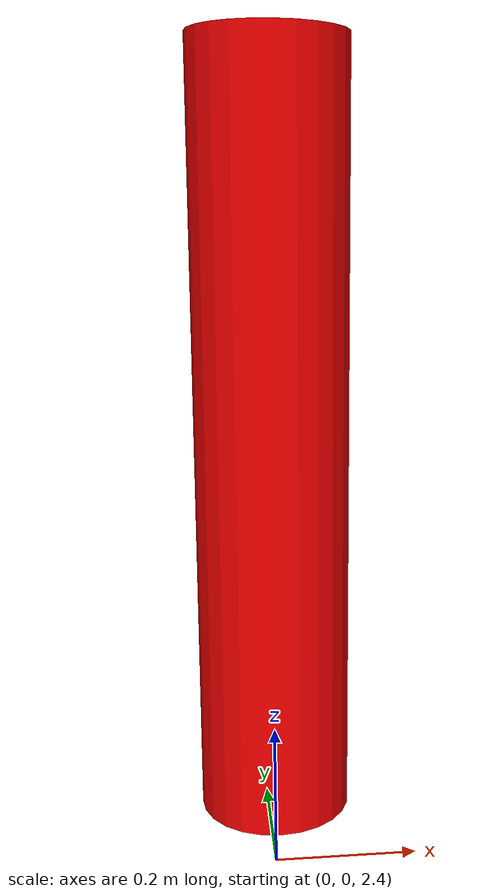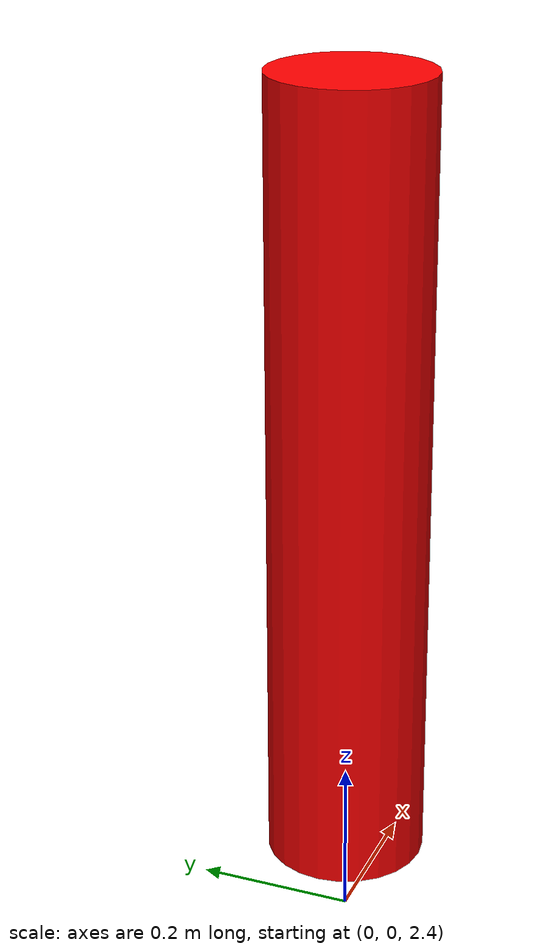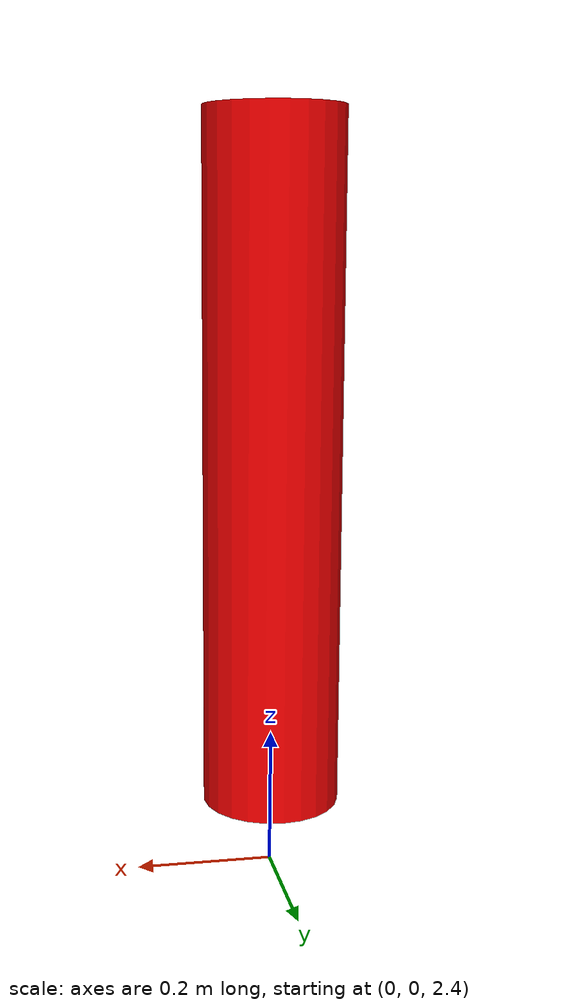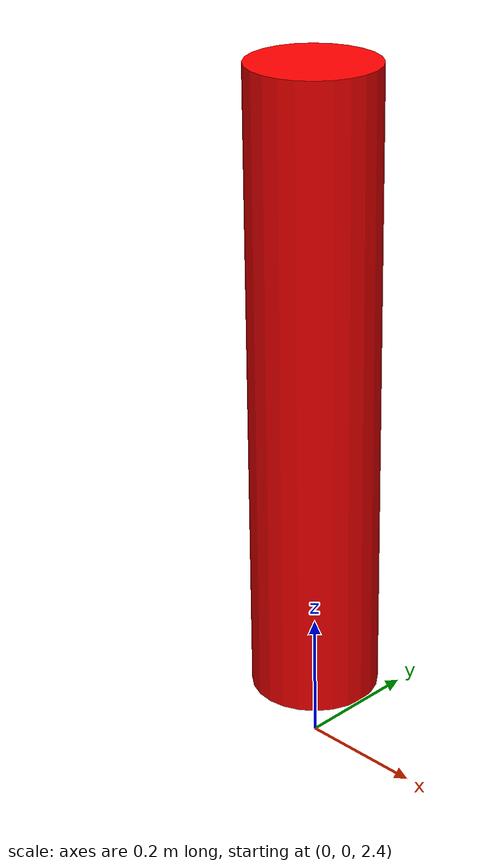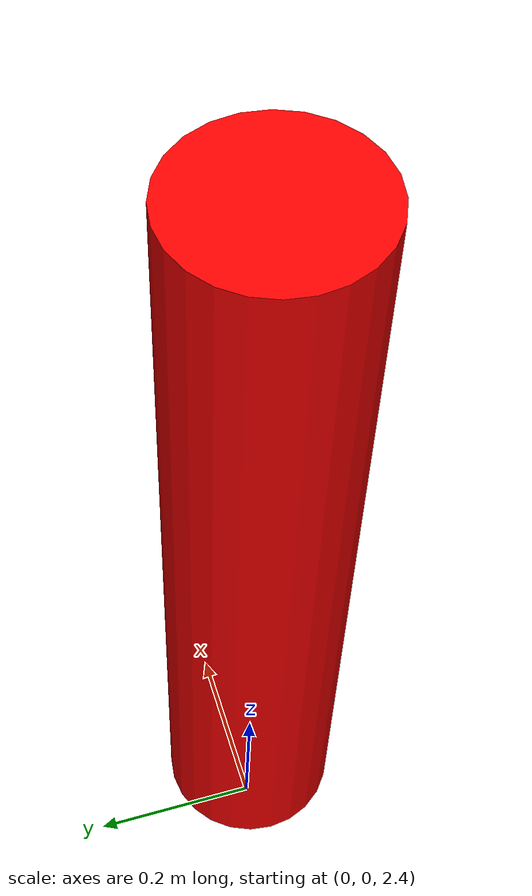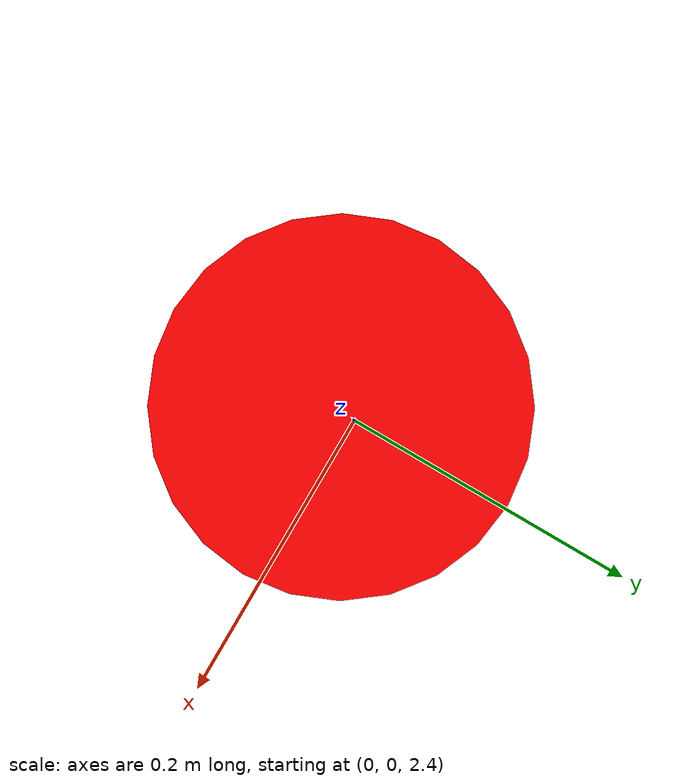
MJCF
<mujoco>
  <option gravity="0 0 -9.81"/>

  <worldbody>
    <!-- Lighting and Ground -->
    <light diffuse=".5 .5 .5" pos="0 0 3" dir="0 0 -1"/>
    <geom type="plane" size="5 5 0.1" rgba=".9 .9 .9 1"/>

    <!-- Rocket Model -->
    <body name="rocket" pos="0 0 3">
      <!-- 6DOF -->
      <freejoint/>
      <!-- Body -->
      <geom type="cylinder" size="0.1 0.5" rgba="1 0 0 1" mass="1.0"/>
    </body>
  </worldbody>
</mujoco>
